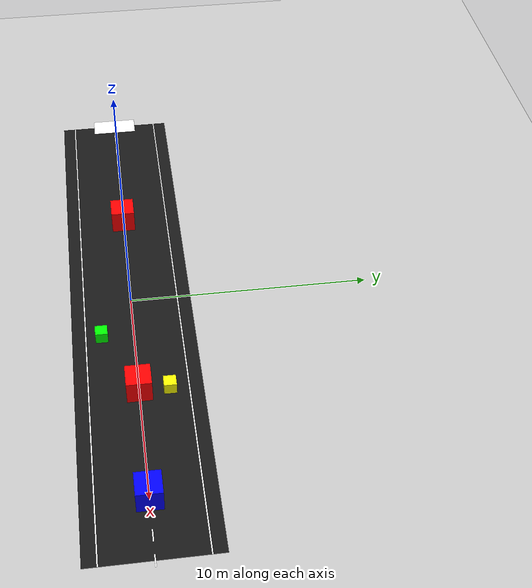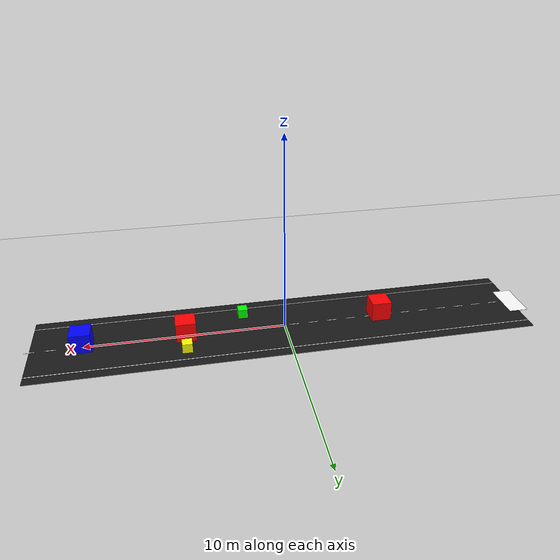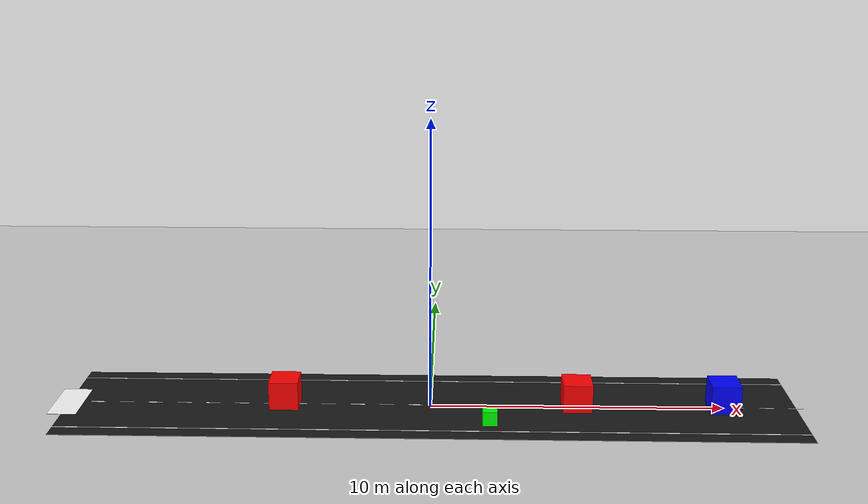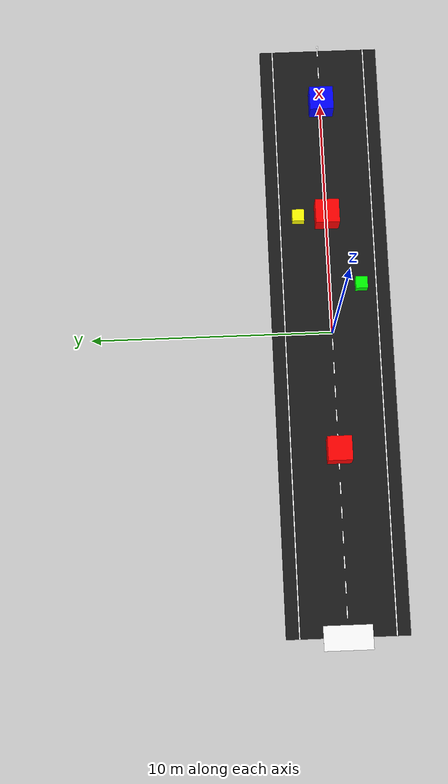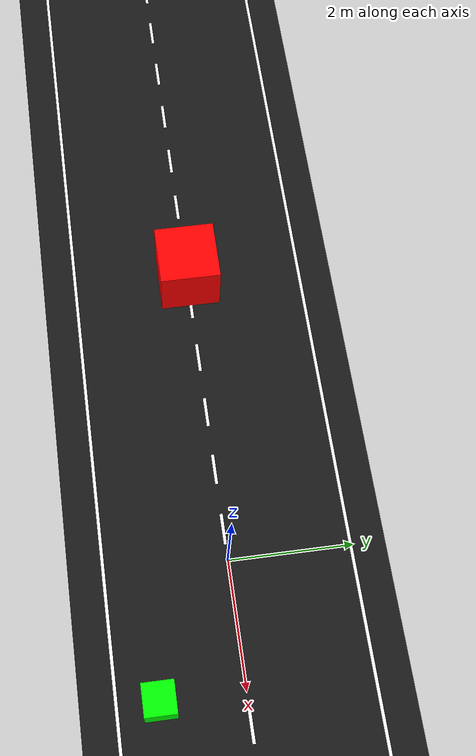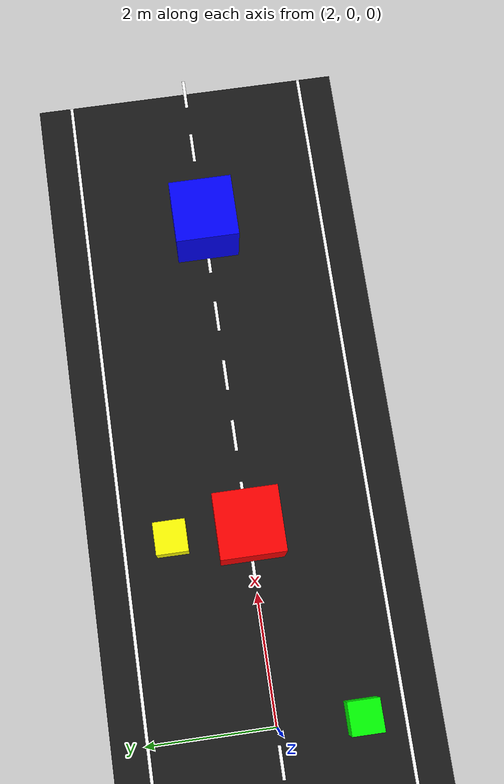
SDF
<?xml version="1.0" ?>
<sdf version="1.6">
  <world name="simple_race_track">

    <!-- Ground plane -->
    <include>
      <uri>model://ground_plane</uri>
    </include>

    <!-- Light -->
    <include>
      <uri>model://sun</uri>
    </include>

    <model name="obstacle_1">
      <static>true</static>
      <link name="link">
        <visual name="visual">
          <geometry>
            <box>
              <size>1 1 1</size> <!-- Kích thước của vật cản -->
            </box>
          </geometry>
          <material>
            <ambient>1 0 0 1</ambient> <!-- Màu sắc (đỏ) -->
            <diffuse>1 0 0 1</diffuse>
          </material>
        </visual>
        <collision name="collision">
          <geometry>
            <box>
              <size>1 1 1</size> <!-- Kích thước va chạm -->
            </box>
          </geometry>
        </collision>
        <pose>5 0 0.5 0 0 0</pose> <!-- Vị trí của vật cản -->
      </link>
    </model>

    <!-- Vật cản nhỏ gần làn trái phía trước xe -->
    <model name="obstacle_small_left">
      <static>true</static>
      <link name="link">
        <visual name="visual">
          <geometry>
            <box>
              <size>0.5 0.5 0.5</size> <!-- Nhỏ hơn vật cản lớn -->
            </box>
          </geometry>
          <material>
            <ambient>0 1 0 1</ambient> <!-- Màu xanh lá -->
            <diffuse>0 1 0 1</diffuse>
          </material>
        </visual>
        <collision name="collision">
          <geometry>
            <box>
              <size>0.5 0.5 0.5</size>
            </box>
          </geometry>
        </collision>
        <pose>2 -1.3 0.25 0 0 0</pose> <!-- Gần phía trước, lệch trái -->
      </link>
    </model>

    <!-- Vật cản nhỏ gần làn phải, phía sau một chút -->
    <model name="obstacle_small_right">
      <static>true</static>
      <link name="link">
        <visual name="visual">
          <geometry>
            <box>
              <size>0.5 0.5 0.5</size>
            </box>
          </geometry>
          <material>
            <ambient>1 1 0 1</ambient> <!-- Màu vàng -->
            <diffuse>1 1 0 1</diffuse>
          </material>
        </visual>
        <collision name="collision">
          <geometry>
            <box>
              <size>0.5 0.5 0.5</size>
            </box>
          </geometry>
        </collision>
        <pose>5 1.2 0.25 0 0 0</pose> <!-- Xa hơn, lệch phải -->
      </link>
    </model>

    <model name="obstacle_2">
      <static>true</static>
      <link name="link">
        <visual name="visual">
          <geometry>
            <box>
              <size>1 1 1</size>
            </box>
          </geometry>
          <material>
            <ambient>0 0 1 1</ambient> <!-- Màu sắc (xanh) -->
            <diffuse>0 0 1 1</diffuse>
          </material>
        </visual>
        <collision name="collision">
          <geometry>
            <box>
              <size>1 1 1</size> <!-- Kích thước va chạm -->
            </box>
          </geometry>
        </collision>
        <pose>10 0 0.5 0 0 0</pose> <!-- Vị trí của vật cản -->
      </link>
    </model>

    <model name="obstacle_3">
      <static>true</static>
      <link name="link">
        <visual name="visual">
          <geometry>
            <box>
              <size>1 1 1</size> <!-- Kích thước của vật cản -->
            </box>
          </geometry>
          <material>
            <ambient>1 0 0 1</ambient> <!-- Màu sắc (đỏ) -->
            <diffuse>1 0 0 1</diffuse>
          </material>
        </visual>
        <collision name="collision">
          <geometry>
            <box>
              <size>1 1 1</size> <!-- Kích thước va chạm -->
            </box>
          </geometry>
        </collision>
        <pose>-5 0 0.5 0 0 0</pose> <!-- Vị trí của vật cản -->
      </link>
    </model>

    <!-- Asphalth road surface -->
    <model name="road_surface">
      <static>true</static>
      <link name="link">
        <collision name="collision">
          <geometry>
            <box>
              <size>25 5 0.01</size>
            </box>
          </geometry>
          <surface>
            <contact>
              <ode/>
            </contact>
            <bounce/>
            <friction>
              <ode/>
            </friction>
          </surface>
        </collision>
        <visual name="visual">
          <geometry>
            <box>
              <size>25 5 0.01</size>
            </box>
          </geometry>
          <material>
            <ambient>0.1 0.1 0.1 1</ambient>
            <diffuse>0.1 0.1 0.1 1</diffuse>
          </material>
        </visual>
        <pose>0 0 0.005 0 0 0</pose>
      </link>
    </model>

    <!-- Continuous white lines on left and right -->
    <model name="left_line">
      <static>true</static>
      <link name="link">
        <visual name="visual">
          <geometry>
            <box>
              <size>25 0.05 0.01</size>
            </box>
          </geometry>
          <material>
            <ambient>1 1 1 1</ambient>
            <diffuse>1 1 1 1</diffuse>
          </material>
        </visual>
        <pose>0 -1.95 0.011 0 0 0</pose>  <!-- vạch trái -->

      </link>
    </model>

    <model name="right_line">
      <static>true</static>
      <link name="link">
        <visual name="visual">
          <geometry>
            <box>
              <size>25 0.05 0.01</size>
            </box>
          </geometry>
          <material>
            <ambient>1 1 1 1</ambient>
            <diffuse>1 1 1 1</diffuse>
          </material>
        </visual>
        <pose>0 1.95 0.011 0 0 0</pose>
      </link>
    </model>

    <!-- Dashed center line (repeated white boxes) -->

    <model name="center_dash_#3">
      <static>true</static>
      <link name="link">
        <visual name="visual">
          <geometry>
            <box>
              <size>1 2 0.01</size>
            </box>
          </geometry>
          <material>
            <ambient>1 1 1 1</ambient>
            <diffuse>1 1 1 1</diffuse>
          </material>
        </visual>
        <pose>-12.5 0 0.011 0 0 0</pose>
      </link>
    </model>
    <model name="center_dash_#2">
      <static>true</static>
      <link name="link">
        <visual name="visual">
          <geometry>
            <box>
              <size>0.5 0.05 0.01</size>
            </box>
          </geometry>
          <material>
            <ambient>1 1 1 1</ambient>
            <diffuse>1 1 1 1</diffuse>
          </material>
        </visual>
        <pose>-11.5 0 0.011 0 0 0</pose>
      </link>
    </model>
    <model name="center_dash_#1">
      <static>true</static>
      <link name="link">
        <visual name="visual">
          <geometry>
            <box>
              <size>0.5 0.05 0.01</size>
            </box>
          </geometry>
          <material>
            <ambient>1 1 1 1</ambient>
            <diffuse>1 1 1 1</diffuse>
          </material>
        </visual>
        <pose>-10.5 0 0.011 0 0 0</pose>
      </link>
    </model>
    <model name="center_dash_0">
      <static>true</static>
      <link name="link">
        <visual name="visual">
          <geometry>
            <box>
              <size>0.5 0.05 0.01</size>
            </box>
          </geometry>
          <material>
            <ambient>1 1 1 1</ambient>
            <diffuse>1 1 1 1</diffuse>
          </material>
        </visual>
        <pose>-9.5 0 0.011 0 0 0</pose>
      </link>
    </model>
    <model name="center_dash_1">
      <static>true</static>
      <link name="link">
        <visual name="visual">
          <geometry>
            <box>
              <size>0.5 0.05 0.01</size>
            </box>
          </geometry>
          <material>
            <ambient>1 1 1 1</ambient>
            <diffuse>1 1 1 1</diffuse>
          </material>
        </visual>
        <pose>-8.5 0 0.011 0 0 0</pose>
      </link>
    </model>
    <model name="center_dash_2">
      <static>true</static>
      <link name="link">
        <visual name="visual">
          <geometry>
            <box>
              <size>0.5 0.05 0.01</size>
            </box>
          </geometry>
          <material>
            <ambient>1 1 1 1</ambient>
            <diffuse>1 1 1 1</diffuse>
          </material>
        </visual>
        <pose>-7.5 0 0.011 0 0 0</pose>
      </link>
    </model>
    <model name="center_dash_3">
      <static>true</static>
      <link name="link">
        <visual name="visual">
          <geometry>
            <box>
              <size>0.5 0.05 0.01</size>
            </box>
          </geometry>
          <material>
            <ambient>1 1 1 1</ambient>
            <diffuse>1 1 1 1</diffuse>
          </material>
        </visual>
        <pose>-6.5 0 0.011 0 0 0</pose>
      </link>
    </model>
    <model name="center_dash_4">
      <static>true</static>
      <link name="link">
        <visual name="visual">
          <geometry>
            <box>
              <size>0.5 0.05 0.01</size>
            </box>
          </geometry>
          <material>
            <ambient>1 1 1 1</ambient>
            <diffuse>1 1 1 1</diffuse>
          </material>
        </visual>
        <pose>-5.5 0 0.011 0 0 0</pose>
      </link>
    </model>
    <model name="center_dash_5">
      <static>true</static>
      <link name="link">
        <visual name="visual">
          <geometry>
            <box>
              <size>0.5 0.05 0.01</size>
            </box>
          </geometry>
          <material>
            <ambient>1 1 1 1</ambient>
            <diffuse>1 1 1 1</diffuse>
          </material>
        </visual>
        <pose>-4.5 0 0.011 0 0 0</pose>
      </link>
    </model>
    <model name="center_dash_6">
      <static>true</static>
      <link name="link">
        <visual name="visual">
          <geometry>
            <box>
              <size>0.5 0.05 0.01</size>
            </box>
          </geometry>
          <material>
            <ambient>1 1 1 1</ambient>
            <diffuse>1 1 1 1</diffuse>
          </material>
        </visual>
        <pose>-3.5 0 0.011 0 0 0</pose>
      </link>
    </model>
    <model name="center_dash_7">
      <static>true</static>
      <link name="link">
        <visual name="visual">
          <geometry>
            <box>
              <size>0.5 0.05 0.01</size>
            </box>
          </geometry>
          <material>
            <ambient>1 1 1 1</ambient>
            <diffuse>1 1 1 1</diffuse>
          </material>
        </visual>
        <pose>-2.5 0 0.011 0 0 0</pose>
      </link>
    </model>
    <model name="center_dash_8">
      <static>true</static>
      <link name="link">
        <visual name="visual">
          <geometry>
            <box>
              <size>0.5 0.05 0.01</size>
            </box>
          </geometry>
          <material>
            <ambient>1 1 1 1</ambient>
            <diffuse>1 1 1 1</diffuse>
          </material>
        </visual>
        <pose>-1.5 0 0.011 0 0 0</pose>
      </link>
    </model>
    <model name="center_dash_9">
      <static>true</static>
      <link name="link">
        <visual name="visual">
          <geometry>
            <box>
              <size>0.5 0.05 0.01</size>
            </box>
          </geometry>
          <material>
            <ambient>1 1 1 1</ambient>
            <diffuse>1 1 1 1</diffuse>
          </material>
        </visual>
        <pose>-0.5 0 0.011 0 0 0</pose>
      </link>
    </model>
    <model name="center_dash_10">
      <static>true</static>
      <link name="link">
        <visual name="visual">
          <geometry>
            <box>
              <size>0.5 0.05 0.01</size>
            </box>
          </geometry>
          <material>
            <ambient>1 1 1 1</ambient>
            <diffuse>1 1 1 1</diffuse>
          </material>
        </visual>
        <pose>0.5 0 0.011 0 0 0</pose>
      </link>
    </model>
    <model name="center_dash_11">
      <static>true</static>
      <link name="link">
        <visual name="visual">
          <geometry>
            <box>
              <size>0.5 0.05 0.01</size>
            </box>
          </geometry>
          <material>
            <ambient>1 1 1 1</ambient>
            <diffuse>1 1 1 1</diffuse>
          </material>
        </visual>
        <pose>1.5 0 0.011 0 0 0</pose>
      </link>
    </model>
    <model name="center_dash_12">
      <static>true</static>
      <link name="link">
        <visual name="visual">
          <geometry>
            <box>
              <size>0.5 0.05 0.01</size>
            </box>
          </geometry>
          <material>
            <ambient>1 1 1 1</ambient>
            <diffuse>1 1 1 1</diffuse>
          </material>
        </visual>
        <pose>2.5 0 0.011 0 0 0</pose>
      </link>
    </model>
    <model name="center_dash_13">
      <static>true</static>
      <link name="link">
        <visual name="visual">
          <geometry>
            <box>
              <size>0.5 0.05 0.01</size>
            </box>
          </geometry>
          <material>
            <ambient>1 1 1 1</ambient>
            <diffuse>1 1 1 1</diffuse>
          </material>
        </visual>
        <pose>3.5 0 0.011 0 0 0</pose>
      </link>
    </model>
    <model name="center_dash_14">
      <static>true</static>
      <link name="link">
        <visual name="visual">
          <geometry>
            <box>
              <size>0.5 0.05 0.01</size>
            </box>
          </geometry>
          <material>
            <ambient>1 1 1 1</ambient>
            <diffuse>1 1 1 1</diffuse>
          </material>
        </visual>
        <pose>4.5 0 0.011 0 0 0</pose>
      </link>
    </model>
    <model name="center_dash_15">
      <static>true</static>
      <link name="link">
        <visual name="visual">
          <geometry>
            <box>
              <size>0.5 0.05 0.01</size>
            </box>
          </geometry>
          <material>
            <ambient>1 1 1 1</ambient>
            <diffuse>1 1 1 1</diffuse>
          </material>
        </visual>
        <pose>5.5 0 0.011 0 0 0</pose>
      </link>
    </model>
    <model name="center_dash_16">
      <static>true</static>
      <link name="link">
        <visual name="visual">
          <geometry>
            <box>
              <size>0.5 0.05 0.01</size>
            </box>
          </geometry>
          <material>
            <ambient>1 1 1 1</ambient>
            <diffuse>1 1 1 1</diffuse>
          </material>
        </visual>
        <pose>6.5 0 0.011 0 0 0</pose>
      </link>
    </model>
    <model name="center_dash_17">
      <static>true</static>
      <link name="link">
        <visual name="visual">
          <geometry>
            <box>
              <size>0.5 0.05 0.01</size>
            </box>
          </geometry>
          <material>
            <ambient>1 1 1 1</ambient>
            <diffuse>1 1 1 1</diffuse>
          </material>
        </visual>
        <pose>7.5 0 0.011 0 0 0</pose>
      </link>
    </model>
    <model name="center_dash_18">
      <static>true</static>
      <link name="link">
        <visual name="visual">
          <geometry>
            <box>
              <size>0.5 0.05 0.01</size>
            </box>
          </geometry>
          <material>
            <ambient>1 1 1 1</ambient>
            <diffuse>1 1 1 1</diffuse>
          </material>
        </visual>
        <pose>8.5 0 0.011 0 0 0</pose>
      </link>
    </model>
    <model name="center_dash_19">
      <static>true</static>
      <link name="link">
        <visual name="visual">
          <geometry>
            <box>
              <size>0.5 0.05 0.01</size>
            </box>
          </geometry>
          <material>
            <ambient>1 1 1 1</ambient>
            <diffuse>1 1 1 1</diffuse>
          </material>
        </visual>
        <pose>9.5 0 0.011 0 0 0</pose>
      </link>
    </model>
    <model name="center_dash_20">
      <static>true</static>
      <link name="link">
        <visual name="visual">
          <geometry>
            <box>
              <size>0.5 0.05 0.01</size>
            </box>
          </geometry>
          <material>
            <ambient>1 1 1 1</ambient>
            <diffuse>1 1 1 1</diffuse>
          </material>
        </visual>
        <pose>10.5 0 0.011 0 0 0</pose>
      </link>
    </model>
    <model name="center_dash_21">
      <static>true</static>
      <link name="link">
        <visual name="visual">
          <geometry>
            <box>
              <size>0.5 0.05 0.01</size>
            </box>
          </geometry>
          <material>
            <ambient>1 1 1 1</ambient>
            <diffuse>1 1 1 1</diffuse>
          </material>
        </visual>
        <pose>11.5 0 0.011 0 0 0</pose>
      </link>
    </model>
    <model name="center_dash_22">
      <static>true</static>
      <link name="link">
        <visual name="visual">
          <geometry>
            <box>
              <size>0.5 0.05 0.01</size>
            </box>
          </geometry>
          <material>
            <ambient>1 1 1 1</ambient>
            <diffuse>1 1 1 1</diffuse>
          </material>
        </visual>
        <pose>12.5 0 0.011 0 0 0</pose>
      </link>
    </model>
  </world>
</sdf>
